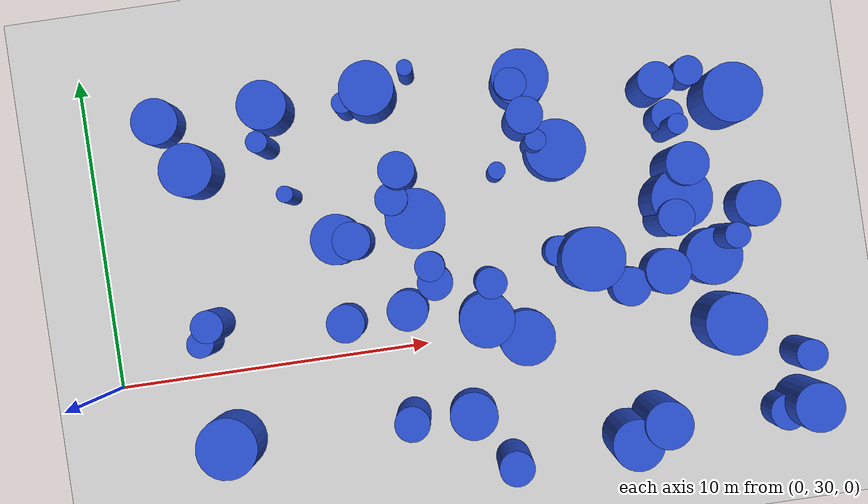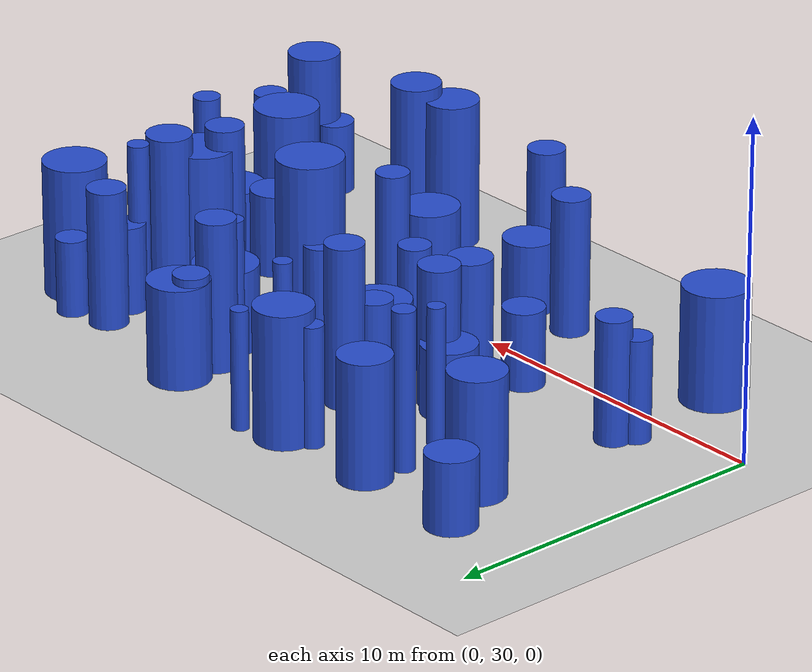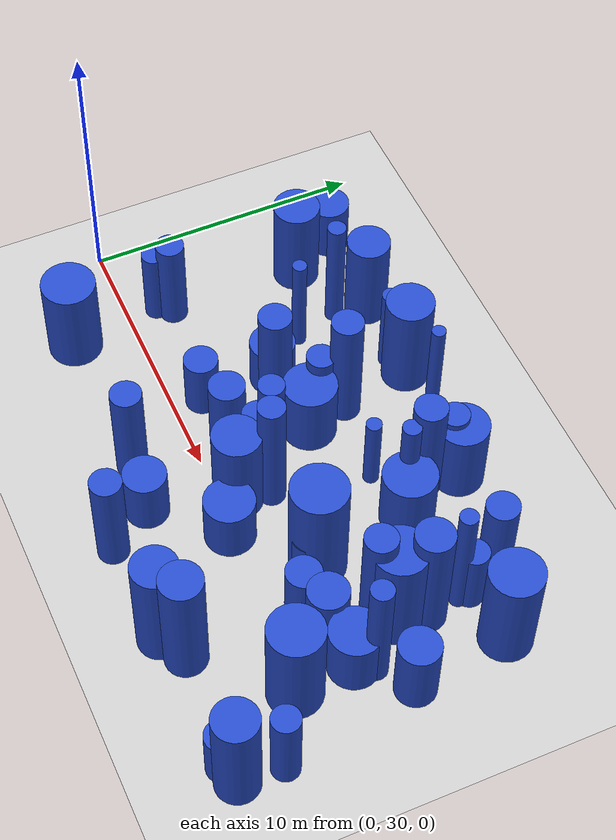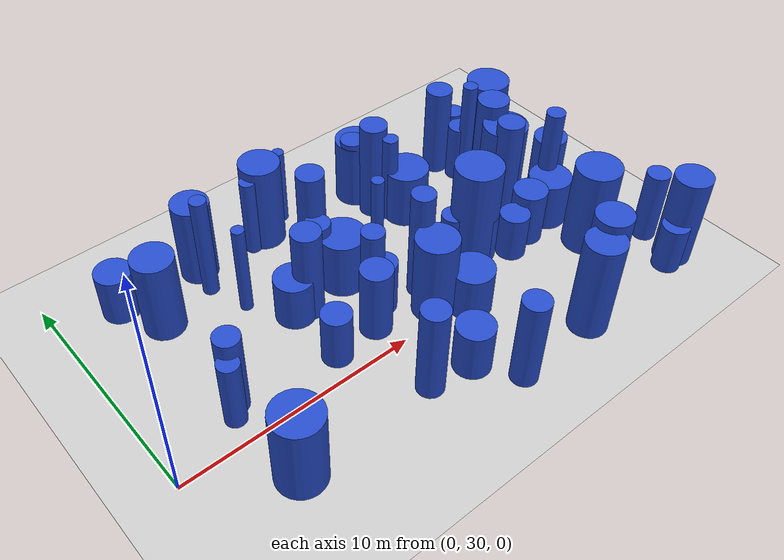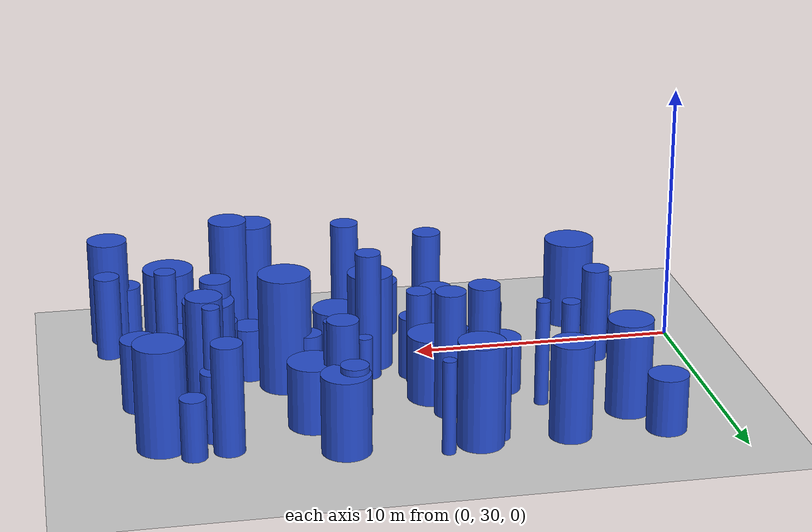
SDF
<sdf version="1.6">
 <world name="default">
  <model name="ground_plane">
   <static>1</static>
   <link name="link">
    <collision name="collision">
     <geometry><plane><normal>0 0 1</normal><size>100 100</size></plane></geometry>
     <surface><friction><ode><mu>100</mu><mu2>50</mu2></ode></friction></surface>
    </collision>
    <visual name="visual">
     <cast_shadows>0</cast_shadows>
     <geometry><plane><normal>0 0 1</normal><size>100 100</size></plane></geometry>
     <material>
      <script><uri>file://media/materials/scripts/gazebo.material</uri><name>Gazebo/Grey</name></script>
     </material>
    </visual>
   </link>
  </model>
  <model name="4">
   <static>0</static>
   <link name="link">
    <inertial>
     <mass>2</mass>
     <inertia>
      <ixx>2.76351</ixx>
      <ixy>0</ixy>
      <ixz>0</ixz>
      <iyy>2.76351</iyy>
      <iyz>0</iyz>
      <izz>0.0663908</izz>
     </inertia>
    </inertial>
    <collision name="collision">
     <geometry><cylinder><length>4.04745</length><radius>0.257664</radius></cylinder></geometry>
     <surface><contact><collide_without_contact>1</collide_without_contact></contact></surface>
    </collision>
    <visual name="visual">
     <geometry><cylinder><length>4.04745</length><radius>0.257664</radius></cylinder></geometry>
     <material>
      <script><uri>file://media/materials/scripts/gazebo.material</uri><name>Gazebo/Blue</name></script>
     </material>
    </visual>
    <gravity>0</gravity>
   </link>
   <pose>6.37285 35.2988 2.02373 0 -0 0</pose>
  </model>
  <model name="16">
   <static>0</static>
   <link name="link">
    <inertial>
     <mass>2</mass>
     <inertia><ixx>3.98692</ixx><ixy>0</ixy><ixz>0</ixz><iyy>3.98692</iyy><iyz>0</iyz><izz>0.541429</izz></inertia>
    </inertial>
    <collision name="collision">
     <geometry><cylinder><length>4.72199</length><radius>0.735818</radius></cylinder></geometry>
     <surface><contact><collide_without_contact>1</collide_without_contact></contact></surface>
    </collision>
    <visual name="visual">
     <geometry><cylinder><length>4.72199</length><radius>0.735818</radius></cylinder></geometry>
     <material>
      <script><uri>file://media/materials/scripts/gazebo.material</uri><name>Gazebo/Blue</name></script>
     </material>
    </visual>
    <gravity>0</gravity>
   </link>
   <pose>16.8892 26.7119 2.361 0 -0 0</pose>
  </model>
  <model name="21">
   <static>0</static>
   <link name="link">
    <inertial>
     <mass>2</mass>
     <inertia><ixx>3.15803</ixx><ixy>0</ixy><ixz>0</ixz><iyy>3.15803</iyy><iyz>0</iyz><izz>0.583815</izz></inertia>
    </inertial>
    <collision name="collision">
     <geometry><cylinder><length>4.14689</length><radius>0.764078</radius></cylinder></geometry>
     <surface><contact><collide_without_contact>1</collide_without_contact></contact></surface>
    </collision>
    <visual name="visual">
     <geometry><cylinder><length>4.14689</length><radius>0.764078</radius></cylinder></geometry>
     <material>
      <script><uri>file://media/materials/scripts/gazebo.material</uri><name>Gazebo/Blue</name></script>
     </material>
    </visual>
    <gravity>0</gravity>
   </link>
   <pose>21.5547 26.5343 2.07345 0 -0 0</pose>
  </model>
  <model name="33">
   <static>0</static>
   <link name="link">
    <inertial>
     <mass>2</mass>
     <inertia><ixx>3.67446</ixx><ixy>0</ixy><ixz>0</ixz><iyy>3.67446</iyy><iyz>0</iyz><izz>0.109586</izz></inertia>
    </inertial>
    <collision name="collision">
     <geometry><cylinder><length>4.66025</length><radius>0.331037</radius></cylinder></geometry>
     <surface><contact><collide_without_contact>1</collide_without_contact></contact></surface>
    </collision>
    <visual name="visual">
     <geometry><cylinder><length>4.66025</length><radius>0.331037</radius></cylinder></geometry>
     <material>
      <script><uri>file://media/materials/scripts/gazebo.material</uri><name>Gazebo/Blue</name></script>
     </material>
    </visual>
    <gravity>0</gravity>
   </link>
   <pose>5.79937 36.9559 2.33013 0 -0 0</pose>
  </model>
  <model name="57">
   <static>0</static>
   <link name="link">
    <inertial>
     <mass>2</mass>
     <inertia>
      <ixx>1.59473</ixx>
      <ixy>0</ixy>
      <ixz>0</ixz>
      <iyy>1.59473</iyy>
      <iyz>0</iyz>
      <izz>0.0761013</izz>
     </inertia>
    </inertial>
    <collision name="collision">
     <geometry><cylinder><length>3.05615</length><radius>0.275865</radius></cylinder></geometry>
     <surface><contact><collide_without_contact>1</collide_without_contact></contact></surface>
    </collision>
    <visual name="visual">
     <geometry><cylinder><length>3.05615</length><radius>0.275865</radius></cylinder></geometry>
     <material>
      <script><uri>file://media/materials/scripts/gazebo.material</uri><name>Gazebo/Blue</name></script>
     </material>
    </visual>
    <gravity>0</gravity>
   </link>
   <pose>12.885 35.111 1.52808 0 -0 0</pose>
  </model>
  <model name="66">
   <static>0</static>
   <link name="link">
    <inertial>
     <mass>2</mass>
     <inertia>
      <ixx>0.890381</ixx>
      <ixy>0</ixy>
      <ixz>0</ixz>
      <iyy>0.890381</iyy>
      <iyz>0</iyz>
      <izz>0.38752</izz>
     </inertia>
    </inertial>
    <collision name="collision">
     <geometry><cylinder><length>2.04444</length><radius>0.622511</radius></cylinder></geometry>
     <surface><contact><collide_without_contact>1</collide_without_contact></contact></surface>
    </collision>
    <visual name="visual">
     <geometry><cylinder><length>2.04444</length><radius>0.622511</radius></cylinder></geometry>
     <material>
      <script><uri>file://media/materials/scripts/gazebo.material</uri><name>Gazebo/Blue</name></script>
     </material>
    </visual>
    <gravity>0</gravity>
   </link>
   <pose>16.5905 30.9335 1.02222 0 -0 0</pose>
  </model>
  <model name="70">
   <static>0</static>
   <link name="link">
    <inertial>
     <mass>2</mass>
     <inertia>
      <ixx>0.970635</ixx>
      <ixy>0</ixy>
      <ixz>0</ixz>
      <iyy>0.970635</iyy>
      <iyz>0</iyz>
      <izz>0.218548</izz>
     </inertia>
    </inertial>
    <collision name="collision">
     <geometry><cylinder><length>2.27336</length><radius>0.467491</radius></cylinder></geometry>
     <surface><contact><collide_without_contact>1</collide_without_contact></contact></surface>
    </collision>
    <visual name="visual">
     <geometry><cylinder><length>2.27336</length><radius>0.467491</radius></cylinder></geometry>
     <material>
      <script><uri>file://media/materials/scripts/gazebo.material</uri><name>Gazebo/Blue</name></script>
     </material>
    </visual>
    <gravity>0</gravity>
   </link>
   <pose>19.2823 37.3799 1.13668 0 -0 0</pose>
  </model>
  <model name="73">
   <static>0</static>
   <link name="link">
    <inertial>
     <mass>2</mass>
     <inertia><ixx>1.07986</ixx><ixy>0</ixy><ixz>0</ixz><iyy>1.07986</iyy><iyz>0</iyz><izz>0.370104</izz></inertia>
    </inertial>
    <collision name="collision">
     <geometry><cylinder><length>2.31708</length><radius>0.608361</radius></cylinder></geometry>
     <surface><contact><collide_without_contact>1</collide_without_contact></contact></surface>
    </collision>
    <visual name="visual">
     <geometry><cylinder><length>2.31708</length><radius>0.608361</radius></cylinder></geometry>
     <material>
      <script><uri>file://media/materials/scripts/gazebo.material</uri><name>Gazebo/Blue</name></script>
     </material>
    </visual>
    <gravity>0</gravity>
   </link>
   <pose>7.54323 31.0733 1.15854 0 -0 0</pose>
  </model>
  <model name="86">
   <static>0</static>
   <link name="link">
    <inertial>
     <mass>2</mass>
     <inertia>
      <ixx>0.922564</ixx>
      <ixy>0</ixy>
      <ixz>0</ixz>
      <iyy>0.922564</iyy>
      <iyz>0</iyz>
      <izz>0.325367</izz>
     </inertia>
    </inertial>
    <collision name="collision">
     <geometry><cylinder><length>2.13525</length><radius>0.57041</radius></cylinder></geometry>
     <surface><contact><collide_without_contact>1</collide_without_contact></contact></surface>
    </collision>
    <visual name="visual">
     <geometry><cylinder><length>2.13525</length><radius>0.57041</radius></cylinder></geometry>
     <material>
      <script><uri>file://media/materials/scripts/gazebo.material</uri><name>Gazebo/Blue</name></script>
     </material>
    </visual>
    <gravity>0</gravity>
   </link>
   <pose>20.9038 26.3233 1.06762 0 -0 0</pose>
  </model>
  <model name="92">
   <static>0</static>
   <link name="link">
    <inertial>
     <mass>2</mass>
     <inertia><ixx>2.42741</ixx><ixy>0</ixy><ixz>0</ixz><iyy>2.42741</iyy><iyz>0</iyz><izz>0.934347</izz></inertia>
    </inertial>
    <collision name="collision">
     <geometry><cylinder><length>3.4295</length><radius>0.966616</radius></cylinder></geometry>
     <surface><contact><collide_without_contact>1</collide_without_contact></contact></surface>
    </collision>
    <visual name="visual">
     <geometry><cylinder><length>3.4295</length><radius>0.966616</radius></cylinder></geometry>
     <material>
      <script><uri>file://media/materials/scripts/gazebo.material</uri><name>Gazebo/Blue</name></script>
     </material>
    </visual>
    <gravity>0</gravity>
   </link>
   <pose>3.42909 27.821 1.71475 0 -0 0</pose>
  </model>
  <model name="144">
   <static>0</static>
   <link name="link">
    <inertial>
     <mass>2</mass>
     <inertia><ixx>2.65699</ixx><ixy>0</ixy><ixz>0</ixz><iyy>2.65699</iyy><iyz>0</iyz><izz>0.740727</izz></inertia>
    </inertial>
    <collision name="collision">
     <geometry><cylinder><length>3.70402</length><radius>0.860655</radius></cylinder></geometry>
     <surface><contact><collide_without_contact>1</collide_without_contact></contact></surface>
    </collision>
    <visual name="visual">
     <geometry><cylinder><length>3.70402</length><radius>0.860655</radius></cylinder></geometry>
     <material>
      <script><uri>file://media/materials/scripts/gazebo.material</uri><name>Gazebo/Blue</name></script>
     </material>
    </visual>
    <gravity>0</gravity>
   </link>
   <pose>11.9288 30.6022 1.85201 0 -0 0</pose>
  </model>
  <model name="146">
   <static>0</static>
   <link name="link">
    <inertial>
     <mass>2</mass>
     <inertia><ixx>1.86074</ixx><ixy>0</ixy><ixz>0</ixz><iyy>1.86074</iyy><iyz>0</iyz><izz>0.802678</izz></inertia>
    </inertial>
    <collision name="collision">
     <geometry><cylinder><length>2.95913</length><radius>0.895923</radius></cylinder></geometry>
     <surface><contact><collide_without_contact>1</collide_without_contact></contact></surface>
    </collision>
    <visual name="visual">
     <geometry><cylinder><length>2.95913</length><radius>0.895923</radius></cylinder></geometry>
     <material>
      <script><uri>file://media/materials/scripts/gazebo.material</uri><name>Gazebo/Blue</name></script>
     </material>
    </visual>
    <gravity>0</gravity>
   </link>
   <pose>14.0103 37.8708 1.47956 0 -0 0</pose>
  </model>
  <model name="148">
   <static>0</static>
   <link name="link">
    <inertial>
     <mass>2</mass>
     <inertia><ixx>1.88797</ixx><ixy>0</ixy><ixz>0</ixz><iyy>1.88797</iyy><iyz>0</iyz><izz>0.238703</izz></inertia>
    </inertial>
    <collision name="collision">
     <geometry><cylinder><length>3.25756</length><radius>0.488572</radius></cylinder></geometry>
     <surface><contact><collide_without_contact>1</collide_without_contact></contact></surface>
    </collision>
    <visual name="visual">
     <geometry><cylinder><length>3.25756</length><radius>0.488572</radius></cylinder></geometry>
     <material>
      <script><uri>file://media/materials/scripts/gazebo.material</uri><name>Gazebo/Blue</name></script>
     </material>
    </visual>
    <gravity>0</gravity>
   </link>
   <pose>21.6938 28.0796 1.62878 0 -0 0</pose>
  </model>
  <model name="156">
   <static>0</static>
   <link name="link">
    <inertial>
     <mass>2</mass>
     <inertia><ixx>2.84976</ixx><ixy>0</ixy><ixz>0</ixz><iyy>2.84976</iyy><iyz>0</iyz><izz>0.29992</izz></inertia>
    </inertial>
    <collision name="collision">
     <geometry><cylinder><length>4.02477</length><radius>0.54765</radius></cylinder></geometry>
     <surface><contact><collide_without_contact>1</collide_without_contact></contact></surface>
    </collision>
    <visual name="visual">
     <geometry><cylinder><length>4.02477</length><radius>0.54765</radius></cylinder></geometry>
     <material>
      <script><uri>file://media/materials/scripts/gazebo.material</uri><name>Gazebo/Blue</name></script>
     </material>
    </visual>
    <gravity>0</gravity>
   </link>
   <pose>12.1792 25.9984 2.01239 0 -0 0</pose>
  </model>
  <model name="162">
   <static>0</static>
   <link name="link">
    <inertial>
     <mass>2</mass>
     <inertia><ixx>1.635</ixx><ixy>0</ixy><ixz>0</ixz><iyy>1.635</iyy><iyz>0</iyz><izz>0.179993</izz></inertia>
    </inertial>
    <collision name="collision">
     <geometry><cylinder><length>3.04468</length><radius>0.424255</radius></cylinder></geometry>
     <surface><contact><collide_without_contact>1</collide_without_contact></contact></surface>
    </collision>
    <visual name="visual">
     <geometry><cylinder><length>3.04468</length><radius>0.424255</radius></cylinder></geometry>
     <material>
      <script><uri>file://media/materials/scripts/gazebo.material</uri><name>Gazebo/Blue</name></script>
     </material>
    </visual>
    <gravity>0</gravity>
   </link>
   <pose>3.04036 31.1089 1.52234 0 -0 0</pose>
  </model>
  <model name="174">
   <static>0</static>
   <link name="link">
    <inertial>
     <mass>2</mass>
     <inertia><ixx>3.38568</ixx><ixy>0</ixy><ixz>0</ixz><iyy>3.38568</iyy><iyz>0</iyz><izz>0.876601</izz></inertia>
    </inertial>
    <collision name="collision">
     <geometry><cylinder><length>4.20526</length><radius>0.93627</radius></cylinder></geometry>
     <surface><contact><collide_without_contact>1</collide_without_contact></contact></surface>
    </collision>
    <visual name="visual">
     <geometry><cylinder><length>4.20526</length><radius>0.93627</radius></cylinder></geometry>
     <material>
      <script><uri>file://media/materials/scripts/gazebo.material</uri><name>Gazebo/Blue</name></script>
     </material>
    </visual>
    <gravity>0</gravity>
   </link>
   <pose>18.3005 33.4376 2.10263 0 -0 0</pose>
  </model>
  <model name="176">
   <static>0</static>
   <link name="link">
    <inertial>
     <mass>2</mass>
     <inertia><ixx>3.79879</ixx><ixy>0</ixy><ixz>0</ixz><iyy>3.79879</iyy><iyz>0</iyz><izz>0.971919</izz></inertia>
    </inertial>
    <collision name="collision">
     <geometry><cylinder><length>4.45836</length><radius>0.98586</radius></cylinder></geometry>
     <surface><contact><collide_without_contact>1</collide_without_contact></contact></surface>
    </collision>
    <visual name="visual">
     <geometry><cylinder><length>4.45836</length><radius>0.98586</radius></cylinder></geometry>
     <material>
      <script><uri>file://media/materials/scripts/gazebo.material</uri><name>Gazebo/Blue</name></script>
     </material>
    </visual>
    <gravity>0</gravity>
   </link>
   <pose>15.3652 31.9953 2.22918 0 -0 0</pose>
  </model>
  <model name="181">
   <static>0</static>
   <link name="link">
    <inertial>
     <mass>2</mass>
     <inertia><ixx>3.07901</ixx><ixy>0</ixy><ixz>0</ixz><iyy>3.07901</iyy><iyz>0</iyz><izz>0.85425</izz></inertia>
    </inertial>
    <collision name="collision">
     <geometry><cylinder><length>3.9889</length><radius>0.924257</radius></cylinder></geometry>
     <surface><contact><collide_without_contact>1</collide_without_contact></contact></surface>
    </collision>
    <visual name="visual">
     <geometry><cylinder><length>3.9889</length><radius>0.924257</radius></cylinder></geometry>
     <material>
      <script><uri>file://media/materials/scripts/gazebo.material</uri><name>Gazebo/Blue</name></script>
     </material>
    </visual>
    <gravity>0</gravity>
   </link>
   <pose>20.3105 36.4134 1.99445 0 -0 0</pose>
  </model>
  <model name="182">
   <static>0</static>
   <link name="link">
    <inertial>
     <mass>2</mass>
     <inertia><ixx>3.45326</ixx><ixy>0</ixy><ixz>0</ixz><iyy>3.45326</iyy><iyz>0</iyz><izz>0.329083</izz></inertia>
    </inertial>
    <collision name="collision">
     <geometry><cylinder><length>4.44211</length><radius>0.573658</radius></cylinder></geometry>
     <surface><contact><collide_without_contact>1</collide_without_contact></contact></surface>
    </collision>
    <visual name="visual">
     <geometry><cylinder><length>4.44211</length><radius>0.573658</radius></cylinder></geometry>
     <material>
      <script><uri>file://media/materials/scripts/gazebo.material</uri><name>Gazebo/Blue</name></script>
     </material>
    </visual>
    <gravity>0</gravity>
   </link>
   <pose>13.9124 36.611 2.22105 0 -0 0</pose>
  </model>
  <model name="187">
   <static>0</static>
   <link name="link">
    <inertial>
     <mass>2</mass>
     <inertia><ixx>1.61433</ixx><ixy>0</ixy><ixz>0</ixz><iyy>1.61433</iyy><iyz>0</iyz><izz>0.267255</izz></inertia>
    </inertial>
    <collision name="collision">
     <geometry><cylinder><length>2.98064</length><radius>0.516967</radius></cylinder></geometry>
     <surface><contact><collide_without_contact>1</collide_without_contact></contact></surface>
    </collision>
    <visual name="visual">
     <geometry><cylinder><length>2.98064</length><radius>0.516967</radius></cylinder></geometry>
     <material>
      <script><uri>file://media/materials/scripts/gazebo.material</uri><name>Gazebo/Blue</name></script>
     </material>
    </visual>
    <gravity>0</gravity>
   </link>
   <pose>9.52698 34.7119 1.49032 0 -0 0</pose>
  </model>
  <model name="211">
   <static>0</static>
   <link name="link">
    <inertial>
     <mass>2</mass>
     <inertia><ixx>2.15898</ixx><ixy>0</ixy><ixz>0</ixz><iyy>2.15898</iyy><iyz>0</iyz><izz>0.107893</izz></inertia>
    </inertial>
    <collision name="collision">
     <geometry><cylinder><length>3.5539</length><radius>0.328471</radius></cylinder></geometry>
     <surface><contact><collide_without_contact>1</collide_without_contact></contact></surface>
    </collision>
    <visual name="visual">
     <geometry><cylinder><length>3.5539</length><radius>0.328471</radius></cylinder></geometry>
     <material>
      <script><uri>file://media/materials/scripts/gazebo.material</uri><name>Gazebo/Blue</name></script>
     </material>
    </visual>
    <gravity>0</gravity>
   </link>
   <pose>8.47169 37.8363 1.77695 0 -0 0</pose>
  </model>
  <model name="216">
   <static>0</static>
   <link name="link">
    <inertial>
     <mass>2</mass>
     <inertia><ixx>1.51501</ixx><ixy>0</ixy><ixz>0</ixz><iyy>1.51501</iyy><iyz>0</iyz><izz>0.904808</izz></inertia>
    </inertial>
    <collision name="collision">
     <geometry><cylinder><length>2.525</length><radius>0.951214</radius></cylinder></geometry>
     <surface><contact><collide_without_contact>1</collide_without_contact></contact></surface>
    </collision>
    <visual name="visual">
     <geometry><cylinder><length>2.525</length><radius>0.951214</radius></cylinder></geometry>
     <material>
      <script><uri>file://media/materials/scripts/gazebo.material</uri><name>Gazebo/Blue</name></script>
     </material>
    </visual>
    <gravity>0</gravity>
   </link>
   <pose>10.1743 34.0222 1.2625 0 -0 0</pose>
  </model>
  <model name="231">
   <static>0</static>
   <link name="link">
    <inertial>
     <mass>2</mass>
     <inertia><ixx>2.96091</ixx><ixy>0</ixy><ixz>0</ixz><iyy>2.96091</iyy><iyz>0</iyz><izz>0.303057</izz></inertia>
    </inertial>
    <collision name="collision">
     <geometry><cylinder><length>4.10564</length><radius>0.550506</radius></cylinder></geometry>
     <surface><contact><collide_without_contact>1</collide_without_contact></contact></surface>
    </collision>
    <visual name="visual">
     <geometry><cylinder><length>4.10564</length><radius>0.550506</radius></cylinder></geometry>
     <material>
      <script><uri>file://media/materials/scripts/gazebo.material</uri><name>Gazebo/Blue</name></script>
     </material>
    </visual>
    <gravity>0</gravity>
   </link>
   <pose>9.21298 27.8071 2.05282 0 -0 0</pose>
  </model>
  <model name="232">
   <static>0</static>
   <link name="link">
    <inertial>
     <mass>2</mass>
     <inertia><ixx>1.0838</ixx><ixy>0</ixy><ixz>0</ixz><iyy>1.0838</iyy><iyz>0</iyz><izz>0.788768</izz></inertia>
    </inertial>
    <collision name="collision">
     <geometry><cylinder><length>2.03384</length><radius>0.888126</radius></cylinder></geometry>
     <surface><contact><collide_without_contact>1</collide_without_contact></contact></surface>
    </collision>
    <visual name="visual">
     <geometry><cylinder><length>2.03384</length><radius>0.888126</radius></cylinder></geometry>
     <material>
      <script><uri>file://media/materials/scripts/gazebo.material</uri><name>Gazebo/Blue</name></script>
     </material>
    </visual>
    <gravity>0</gravity>
   </link>
   <pose>13.1248 29.806 1.01692 0 -0 0</pose>
  </model>
  <model name="277">
   <static>0</static>
   <link name="link">
    <inertial>
     <mass>2</mass>
     <inertia><ixx>1.46714</ixx><ixy>0</ixy><ixz>0</ixz><iyy>1.46714</iyy><iyz>0</iyz><izz>0.509604</izz></inertia>
    </inertial>
    <collision name="collision">
     <geometry><cylinder><length>2.69705</length><radius>0.713866</radius></cylinder></geometry>
     <surface><contact><collide_without_contact>1</collide_without_contact></contact></surface>
    </collision>
    <visual name="visual">
     <geometry><cylinder><length>2.69705</length><radius>0.713866</radius></cylinder></geometry>
     <material>
      <script><uri>file://media/materials/scripts/gazebo.material</uri><name>Gazebo/Blue</name></script>
     </material>
    </visual>
    <gravity>0</gravity>
   </link>
   <pose>20.7955 32.9551 1.34852 0 -0 0</pose>
  </model>
  <model name="278">
   <static>0</static>
   <link name="link">
    <inertial>
     <mass>2</mass>
     <inertia><ixx>2.51276</ixx><ixy>0</ixy><ixz>0</ixz><iyy>2.51276</iyy><iyz>0</iyz><izz>0.59347</izz></inertia>
    </inertial>
    <collision name="collision">
     <geometry><cylinder><length>3.64639</length><radius>0.77037</radius></cylinder></geometry>
     <surface><contact><collide_without_contact>1</collide_without_contact></contact></surface>
    </collision>
    <visual name="visual">
     <geometry><cylinder><length>3.64639</length><radius>0.77037</radius></cylinder></geometry>
     <material>
      <script><uri>file://media/materials/scripts/gazebo.material</uri><name>Gazebo/Blue</name></script>
     </material>
    </visual>
    <gravity>0</gravity>
   </link>
   <pose>6.0175 38.1187 1.8232 0 -0 0</pose>
  </model>
  <model name="282">
   <static>0</static>
   <link name="link">
    <inertial>
     <mass>2</mass>
     <inertia><ixx>1.20351</ixx><ixy>0</ixy><ixz>0</ixz><iyy>1.20351</iyy><iyz>0</iyz><izz>0.809383</izz></inertia>
    </inertial>
    <collision name="collision">
     <geometry><cylinder><length>2.18927</length><radius>0.899657</radius></cylinder></geometry>
     <surface><contact><collide_without_contact>1</collide_without_contact></contact></surface>
    </collision>
    <visual name="visual">
     <geometry><cylinder><length>2.18927</length><radius>0.899657</radius></cylinder></geometry>
     <material>
      <script><uri>file://media/materials/scripts/gazebo.material</uri><name>Gazebo/Blue</name></script>
     </material>
    </visual>
    <gravity>0</gravity>
   </link>
   <pose>19.286 31.5082 1.09464 0 -0 0</pose>
  </model>
  <model name="307">
   <static>0</static>
   <link name="link">
    <inertial>
     <mass>2</mass>
     <inertia><ixx>4.06389</ixx><ixy>0</ixy><ixz>0</ixz><iyy>4.06389</iyy><iyz>0</iyz><izz>0.438309</izz></inertia>
    </inertial>
    <collision name="collision">
     <geometry><cylinder><length>4.80296</length><radius>0.662049</radius></cylinder></geometry>
     <surface><contact><collide_without_contact>1</collide_without_contact></contact></surface>
    </collision>
    <visual name="visual">
     <geometry><cylinder><length>4.80296</length><radius>0.662049</radius></cylinder></geometry>
     <material>
      <script><uri>file://media/materials/scripts/gazebo.material</uri><name>Gazebo/Blue</name></script>
     </material>
    </visual>
    <gravity>0</gravity>
   </link>
   <pose>18.5424 34.4415 2.40148 0 -0 0</pose>
  </model>
  <model name="317">
   <static>0</static>
   <link name="link">
    <inertial>
     <mass>2</mass>
     <inertia><ixx>3.03619</ixx><ixy>0</ixy><ixz>0</ixz><iyy>3.03619</iyy><iyz>0</iyz><izz>0.899867</izz></inertia>
    </inertial>
    <collision name="collision">
     <geometry><cylinder><length>3.93923</length><radius>0.948613</radius></cylinder></geometry>
     <surface><contact><collide_without_contact>1</collide_without_contact></contact></surface>
    </collision>
    <visual name="visual">
     <geometry><cylinder><length>3.93923</length><radius>0.948613</radius></cylinder></geometry>
     <material>
      <script><uri>file://media/materials/scripts/gazebo.material</uri><name>Gazebo/Blue</name></script>
     </material>
    </visual>
    <gravity>0</gravity>
   </link>
   <pose>19.4307 29.3952 1.96962 0 -0 0</pose>
  </model>
  <model name="319">
   <static>0</static>
   <link name="link">
    <inertial>
     <mass>2</mass>
     <inertia><ixx>3.92838</ixx><ixy>0</ixy><ixz>0</ixz><iyy>3.92838</iyy><iyz>0</iyz><izz>0.319174</izz></inertia>
    </inertial>
    <collision name="collision">
     <geometry><cylinder><length>4.75529</length><radius>0.564955</radius></cylinder></geometry>
     <surface><contact><collide_without_contact>1</collide_without_contact></contact></surface>
    </collision>
    <visual name="visual">
     <geometry><cylinder><length>4.75529</length><radius>0.564955</radius></cylinder></geometry>
     <material>
      <script><uri>file://media/materials/scripts/gazebo.material</uri><name>Gazebo/Blue</name></script>
     </material>
    </visual>
    <gravity>0</gravity>
   </link>
   <pose>9.84475 35.5074 2.37765 0 -0 0</pose>
  </model>
  <model name="322">
   <static>0</static>
   <link name="link">
    <inertial>
     <mass>2</mass>
     <inertia><ixx>2.99831</ixx><ixy>0</ixy><ixz>0</ixz><iyy>2.99831</iyy><iyz>0</iyz><izz>0.350652</izz></inertia>
    </inertial>
    <collision name="collision">
     <geometry><cylinder><length>4.11557</length><radius>0.592159</radius></cylinder></geometry>
     <surface><contact><collide_without_contact>1</collide_without_contact></contact></surface>
    </collision>
    <visual name="visual">
     <geometry><cylinder><length>4.11557</length><radius>0.592159</radius></cylinder></geometry>
     <material>
      <script><uri>file://media/materials/scripts/gazebo.material</uri><name>Gazebo/Blue</name></script>
     </material>
    </visual>
    <gravity>0</gravity>
   </link>
   <pose>8.17473 33.5927 2.05779 0 -0 0</pose>
  </model>
  <model name="327">
   <static>0</static>
   <link name="link">
    <inertial>
     <mass>2</mass>
     <inertia>
      <ixx>0.983309</ixx>
      <ixy>0</ixy>
      <ixz>0</ixz>
      <iyy>0.983309</iyy>
      <iyz>0</iyz>
      <izz>0.46405</izz>
     </inertia>
    </inertial>
    <collision name="collision">
     <geometry><cylinder><length>2.12314</length><radius>0.681212</radius></cylinder></geometry>
     <surface><contact><collide_without_contact>1</collide_without_contact></contact></surface>
    </collision>
    <visual name="visual">
     <geometry><cylinder><length>2.12314</length><radius>0.681212</radius></cylinder></geometry>
     <material>
      <script><uri>file://media/materials/scripts/gazebo.material</uri><name>Gazebo/Blue</name></script>
     </material>
    </visual>
    <gravity>0</gravity>
   </link>
   <pose>15.4896 31.6923 1.06157 0 -0 0</pose>
  </model>
  <model name="332">
   <static>0</static>
   <link name="link">
    <inertial>
     <mass>2</mass>
     <inertia><ixx>1.82973</ixx><ixy>0</ixy><ixz>0</ixz><iyy>1.82973</iyy><iyz>0</iyz><izz>0.258966</izz></inertia>
    </inertial>
    <collision name="collision">
     <geometry><cylinder><length>3.19398</length><radius>0.508887</radius></cylinder></geometry>
     <surface><contact><collide_without_contact>1</collide_without_contact></contact></surface>
    </collision>
    <visual name="visual">
     <geometry><cylinder><length>3.19398</length><radius>0.508887</radius></cylinder></geometry>
     <material>
      <script><uri>file://media/materials/scripts/gazebo.material</uri><name>Gazebo/Blue</name></script>
     </material>
    </visual>
    <gravity>0</gravity>
   </link>
   <pose>13.6757 37.7012 1.59699 0 -0 0</pose>
  </model>
  <model name="336">
   <static>0</static>
   <link name="link">
    <inertial>
     <mass>2</mass>
     <inertia><ixx>1.03424</ixx><ixy>0</ixy><ixz>0</ixz><iyy>1.03424</iyy><iyz>0</iyz><izz>0.544578</izz></inertia>
    </inertial>
    <collision name="collision">
     <geometry><cylinder><length>2.13816</length><radius>0.737955</radius></cylinder></geometry>
     <surface><contact><collide_without_contact>1</collide_without_contact></contact></surface>
    </collision>
    <visual name="visual">
     <geometry><cylinder><length>2.13816</length><radius>0.737955</radius></cylinder></geometry>
     <material>
      <script><uri>file://media/materials/scripts/gazebo.material</uri><name>Gazebo/Blue</name></script>
     </material>
    </visual>
    <gravity>0</gravity>
   </link>
   <pose>2.49815 38.2133 1.06908 0 -0 0</pose>
  </model>
  <model name="339">
   <static>0</static>
   <link name="link">
    <inertial>
     <mass>2</mass>
     <inertia>
      <ixx>4.01166</ixx>
      <ixy>0</ixy>
      <ixz>0</ixz>
      <iyy>4.01166</iyy>
      <iyz>0</iyz>
      <izz>0.0983812</izz>
     </inertia>
    </inertial>
    <collision name="collision">
     <geometry><cylinder><length>4.87594</length><radius>0.313658</radius></cylinder></geometry>
     <surface><contact><collide_without_contact>1</collide_without_contact></contact></surface>
    </collision>
    <visual name="visual">
     <geometry><cylinder><length>4.87594</length><radius>0.313658</radius></cylinder></geometry>
     <material>
      <script><uri>file://media/materials/scripts/gazebo.material</uri><name>Gazebo/Blue</name></script>
     </material>
    </visual>
    <gravity>0</gravity>
   </link>
   <pose>18.4054 35.6569 2.43797 0 -0 0</pose>
  </model>
  <model name="344">
   <static>0</static>
   <link name="link">
    <inertial>
     <mass>2</mass>
     <inertia><ixx>3.97624</ixx><ixy>0</ixy><ixz>0</ixz><iyy>3.97624</iyy><iyz>0</iyz><izz>0.314707</izz></inertia>
    </inertial>
    <collision name="collision">
     <geometry><cylinder><length>4.78679</length><radius>0.560987</radius></cylinder></geometry>
     <surface><contact><collide_without_contact>1</collide_without_contact></contact></surface>
    </collision>
    <visual name="visual">
     <geometry><cylinder><length>4.78679</length><radius>0.560987</radius></cylinder></geometry>
     <material>
      <script><uri>file://media/materials/scripts/gazebo.material</uri><name>Gazebo/Blue</name></script>
     </material>
    </visual>
    <gravity>0</gravity>
   </link>
   <pose>17.9844 32.8829 2.39339 0 -0 0</pose>
  </model>
  <model name="360">
   <static>0</static>
   <link name="link">
    <inertial>
     <mass>2</mass>
     <inertia><ixx>2.96996</ixx><ixy>0</ixy><ixz>0</ixz><iyy>2.96996</iyy><iyz>0</iyz><izz>0.319183</izz></inertia>
    </inertial>
    <collision name="collision">
     <geometry><cylinder><length>4.10636</length><radius>0.564963</radius></cylinder></geometry>
     <surface><contact><collide_without_contact>1</collide_without_contact></contact></surface>
    </collision>
    <visual name="visual">
     <geometry><cylinder><length>4.10636</length><radius>0.564963</radius></cylinder></geometry>
     <material>
      <script><uri>file://media/materials/scripts/gazebo.material</uri><name>Gazebo/Blue</name></script>
     </material>
    </visual>
    <gravity>0</gravity>
   </link>
   <pose>18.0344 37.1051 2.05318 0 -0 0</pose>
  </model>
  <model name="374">
   <static>0</static>
   <link name="link">
    <inertial>
     <mass>2</mass>
     <inertia><ixx>2.36032</ixx><ixy>0</ixy><ixz>0</ixz><iyy>2.36032</iyy><iyz>0</iyz><izz>0.257529</izz></inertia>
    </inertial>
    <collision name="collision">
     <geometry><cylinder><length>3.65914</length><radius>0.507473</radius></cylinder></geometry>
     <surface><contact><collide_without_contact>1</collide_without_contact></contact></surface>
    </collision>
    <visual name="visual">
     <geometry><cylinder><length>3.65914</length><radius>0.507473</radius></cylinder></geometry>
     <material>
      <script><uri>file://media/materials/scripts/gazebo.material</uri><name>Gazebo/Blue</name></script>
     </material>
    </visual>
    <gravity>0</gravity>
   </link>
   <pose>3.39471 31.6282 1.82957 0 -0 0</pose>
  </model>
  <model name="389">
   <static>0</static>
   <link name="link">
    <inertial>
     <mass>2</mass>
     <inertia><ixx>1.86877</ixx><ixy>0</ixy><ixz>0</ixz><iyy>1.86877</iyy><iyz>0</iyz><izz>0.412964</izz></inertia>
    </inertial>
    <collision name="collision">
     <geometry><cylinder><length>3.15812</length><radius>0.642623</radius></cylinder></geometry>
     <surface><contact><collide_without_contact>1</collide_without_contact></contact></surface>
    </collision>
    <visual name="visual">
     <geometry><cylinder><length>3.15812</length><radius>0.642623</radius></cylinder></geometry>
     <material>
      <script><uri>file://media/materials/scripts/gazebo.material</uri><name>Gazebo/Blue</name></script>
     </material>
    </visual>
    <gravity>0</gravity>
   </link>
   <pose>9.54189 31.229 1.57906 0 -0 0</pose>
  </model>
  <model name="394">
   <static>0</static>
   <link name="link">
    <inertial>
     <mass>2</mass>
     <inertia><ixx>1.46649</ixx><ixy>0</ixy><ixz>0</ixz><iyy>1.46649</iyy><iyz>0</iyz><izz>0.899745</izz></inertia>
    </inertial>
    <collision name="collision">
     <geometry><cylinder><length>2.46975</length><radius>0.948549</radius></cylinder></geometry>
     <surface><contact><collide_without_contact>1</collide_without_contact></contact></surface>
    </collision>
    <visual name="visual">
     <geometry><cylinder><length>2.46975</length><radius>0.948549</radius></cylinder></geometry>
     <material>
      <script><uri>file://media/materials/scripts/gazebo.material</uri><name>Gazebo/Blue</name></script>
     </material>
    </visual>
    <gravity>0</gravity>
   </link>
   <pose>14.8178 35.5403 1.23488 0 -0 0</pose>
  </model>
  <model name="397">
   <static>0</static>
   <link name="link">
    <inertial>
     <mass>2</mass>
     <inertia><ixx>2.26137</ixx><ixy>0</ixy><ixz>0</ixz><iyy>2.26137</iyy><iyz>0</iyz><izz>0.220916</izz></inertia>
    </inertial>
    <collision name="collision">
     <geometry><cylinder><length>3.59242</length><radius>0.470017</radius></cylinder></geometry>
     <surface><contact><collide_without_contact>1</collide_without_contact></contact></surface>
    </collision>
    <visual name="visual">
     <geometry><cylinder><length>3.59242</length><radius>0.470017</radius></cylinder></geometry>
     <material>
      <script><uri>file://media/materials/scripts/gazebo.material</uri><name>Gazebo/Blue</name></script>
     </material>
    </visual>
    <gravity>0</gravity>
   </link>
   <pose>10.4171 32.482 1.79621 0 -0 0</pose>
  </model>
  <model name="411">
   <static>0</static>
   <link name="link">
    <inertial>
     <mass>2</mass>
     <inertia>
      <ixx>0.827458</ixx>
      <ixy>0</ixy>
      <ixz>0</ixz>
      <iyy>0.827458</iyy>
      <iyz>0</iyz>
      <izz>0.0778628</izz>
     </inertia>
    </inertial>
    <collision name="collision">
     <geometry><cylinder><length>2.17512</length><radius>0.279039</radius></cylinder></geometry>
     <surface><contact><collide_without_contact>1</collide_without_contact></contact></surface>
    </collision>
    <visual name="visual">
     <geometry><cylinder><length>2.17512</length><radius>0.279039</radius></cylinder></geometry>
     <material>
      <script><uri>file://media/materials/scripts/gazebo.material</uri><name>Gazebo/Blue</name></script>
     </material>
    </visual>
    <gravity>0</gravity>
   </link>
   <pose>5.9985 38.5905 1.08756 0 -0 0</pose>
  </model>
  <model name="412">
   <static>0</static>
   <link name="link">
    <inertial>
     <mass>2</mass>
     <inertia><ixx>4.19929</ixx><ixy>0</ixy><ixz>0</ixz><iyy>4.19929</iyy><iyz>0</iyz><izz>0.23009</izz></inertia>
    </inertial>
    <collision name="collision">
     <geometry><cylinder><length>4.9503</length><radius>0.479677</radius></cylinder></geometry>
     <surface><contact><collide_without_contact>1</collide_without_contact></contact></surface>
    </collision>
    <visual name="visual">
     <geometry><cylinder><length>4.9503</length><radius>0.479677</radius></cylinder></geometry>
     <material>
      <script><uri>file://media/materials/scripts/gazebo.material</uri><name>Gazebo/Blue</name></script>
     </material>
    </visual>
    <gravity>0</gravity>
   </link>
   <pose>12.1891 31.7289 2.47515 0 -0 0</pose>
  </model>
  <model name="425">
   <static>0</static>
   <link name="link">
    <inertial>
     <mass>2</mass>
     <inertia><ixx>4.06559</ixx><ixy>0</ixy><ixz>0</ixz><iyy>4.06559</iyy><iyz>0</iyz><izz>0.153631</izz></inertia>
    </inertial>
    <collision name="collision">
     <geometry><cylinder><length>4.8921</length><radius>0.391958</radius></cylinder></geometry>
     <surface><contact><collide_without_contact>1</collide_without_contact></contact></surface>
    </collision>
    <visual name="visual">
     <geometry><cylinder><length>4.8921</length><radius>0.391958</radius></cylinder></geometry>
     <material>
      <script><uri>file://media/materials/scripts/gazebo.material</uri><name>Gazebo/Blue</name></script>
     </material>
    </visual>
    <gravity>0</gravity>
   </link>
   <pose>19.7169 32.0905 2.44605 0 -0 0</pose>
  </model>
  <model name="430">
   <static>0</static>
   <link name="link">
    <inertial>
     <mass>2</mass>
     <inertia><ixx>2.83448</ixx><ixy>0</ixy><ixz>0</ixz><iyy>2.83448</iyy><iyz>0</iyz><izz>0.108666</izz></inertia>
    </inertial>
    <collision name="collision">
     <geometry><cylinder><length>4.08422</length><radius>0.329646</radius></cylinder></geometry>
     <surface><contact><collide_without_contact>1</collide_without_contact></contact></surface>
    </collision>
    <visual name="visual">
     <geometry><cylinder><length>4.08422</length><radius>0.329646</radius></cylinder></geometry>
     <material>
      <script><uri>file://media/materials/scripts/gazebo.material</uri><name>Gazebo/Blue</name></script>
     </material>
    </visual>
    <gravity>0</gravity>
   </link>
   <pose>14.1571 35.8301 2.04211 0 -0 0</pose>
  </model>
  <model name="438">
   <static>0</static>
   <link name="link">
    <inertial>
     <mass>2</mass>
     <inertia><ixx>1.2605</ixx><ixy>0</ixy><ixz>0</ixz><iyy>1.2605</iyy><iyz>0</iyz><izz>0.510558</izz></inertia>
    </inertial>
    <collision name="collision">
     <geometry><cylinder><length>2.45588</length><radius>0.714533</radius></cylinder></geometry>
     <surface><contact><collide_without_contact>1</collide_without_contact></contact></surface>
    </collision>
    <visual name="visual">
     <geometry><cylinder><length>2.45588</length><radius>0.714533</radius></cylinder></geometry>
     <material>
      <script><uri>file://media/materials/scripts/gazebo.material</uri><name>Gazebo/Blue</name></script>
     </material>
    </visual>
    <gravity>0</gravity>
   </link>
   <pose>17.7698 31.2497 1.22794 0 -0 0</pose>
  </model>
  <model name="439">
   <static>0</static>
   <link name="link">
    <inertial>
     <mass>2</mass>
     <inertia><ixx>2.51418</ixx><ixy>0</ixy><ixz>0</ixz><iyy>2.51418</iyy><iyz>0</iyz><izz>0.695095</izz></inertia>
    </inertial>
    <collision name="collision">
     <geometry><cylinder><length>3.60552</length><radius>0.833724</radius></cylinder></geometry>
     <surface><contact><collide_without_contact>1</collide_without_contact></contact></surface>
    </collision>
    <visual name="visual">
     <geometry><cylinder><length>3.60552</length><radius>0.833724</radius></cylinder></geometry>
     <material>
      <script><uri>file://media/materials/scripts/gazebo.material</uri><name>Gazebo/Blue</name></script>
     </material>
    </visual>
    <gravity>0</gravity>
   </link>
   <pose>3.42693 36.4871 1.80276 0 -0 0</pose>
  </model>
  <model name="441">
   <static>0</static>
   <link name="link">
    <inertial>
     <mass>2</mass>
     <inertia><ixx>1.26284</ixx><ixy>0</ixy><ixz>0</ixz><iyy>1.26284</iyy><iyz>0</iyz><izz>0.251954</izz></inertia>
    </inertial>
    <collision name="collision">
     <geometry><cylinder><length>2.61174</length><radius>0.50195</radius></cylinder></geometry>
     <surface><contact><collide_without_contact>1</collide_without_contact></contact></surface>
    </collision>
    <visual name="visual">
     <geometry><cylinder><length>2.61174</length><radius>0.50195</radius></cylinder></geometry>
     <material>
      <script><uri>file://media/materials/scripts/gazebo.material</uri><name>Gazebo/Blue</name></script>
     </material>
    </visual>
    <gravity>0</gravity>
   </link>
   <pose>18.4032 36.0696 1.30587 0 -0 0</pose>
  </model>
  <model name="444">
   <static>0</static>
   <link name="link">
    <inertial>
     <mass>2</mass>
     <inertia>
      <ixx>2.10249</ixx>
      <ixy>0</ixy>
      <ixz>0</ixz>
      <iyy>2.10249</iyy>
      <iyz>0</iyz>
      <izz>0.0626351</izz>
     </inertia>
    </inertial>
    <collision name="collision">
     <geometry><cylinder><length>3.5252</length><radius>0.25027</radius></cylinder></geometry>
     <surface><contact><collide_without_contact>1</collide_without_contact></contact></surface>
    </collision>
    <visual name="visual">
     <geometry><cylinder><length>3.5252</length><radius>0.25027</radius></cylinder></geometry>
     <material>
      <script><uri>file://media/materials/scripts/gazebo.material</uri><name>Gazebo/Blue</name></script>
     </material>
    </visual>
    <gravity>0</gravity>
   </link>
   <pose>10.521 38.6327 1.7626 0 -0 0</pose>
  </model>
  <model name="445">
   <static>0</static>
   <link name="link">
    <inertial>
     <mass>2</mass>
     <inertia><ixx>1.05108</ixx><ixy>0</ixy><ixz>0</ixz><iyy>1.05108</iyy><iyz>0</iyz><izz>0.577948</izz></inertia>
    </inertial>
    <collision name="collision">
     <geometry><cylinder><length>2.13837</length><radius>0.760229</radius></cylinder></geometry>
     <surface><contact><collide_without_contact>1</collide_without_contact></contact></surface>
    </collision>
    <visual name="visual">
     <geometry><cylinder><length>2.13837</length><radius>0.760229</radius></cylinder></geometry>
     <material>
      <script><uri>file://media/materials/scripts/gazebo.material</uri><name>Gazebo/Blue</name></script>
     </material>
    </visual>
    <gravity>0</gravity>
   </link>
   <pose>11.1118 27.6136 1.06919 0 -0 0</pose>
  </model>
  <model name="460">
   <static>0</static>
   <link name="link">
    <inertial>
     <mass>2</mass>
     <inertia>
      <ixx>0.909761</ixx>
      <ixy>0</ixy>
      <ixz>0</ixz>
      <iyy>0.909761</iyy>
      <iyz>0</iyz>
      <izz>0.24145</izz>
     </inertia>
    </inertial>
    <collision name="collision">
     <geometry><cylinder><length>2.17582</length><radius>0.491376</radius></cylinder></geometry>
     <surface><contact><collide_without_contact>1</collide_without_contact></contact></surface>
    </collision>
    <visual name="visual">
     <geometry><cylinder><length>2.17582</length><radius>0.491376</radius></cylinder></geometry>
     <material>
      <script><uri>file://media/materials/scripts/gazebo.material</uri><name>Gazebo/Blue</name></script>
     </material>
    </visual>
    <gravity>0</gravity>
   </link>
   <pose>14.5262 32.3532 1.08791 0 -0 0</pose>
  </model>
  <model name="461">
   <static>0</static>
   <link name="link">
    <inertial>
     <mass>2</mass>
     <inertia><ixx>2.93679</ixx><ixy>0</ixy><ixz>0</ixz><iyy>2.93679</iyy><iyz>0</iyz><izz>0.722365</izz></inertia>
    </inertial>
    <collision name="collision">
     <geometry><cylinder><length>3.93111</length><radius>0.84992</radius></cylinder></geometry>
     <surface><contact><collide_without_contact>1</collide_without_contact></contact></surface>
    </collision>
    <visual name="visual">
     <geometry><cylinder><length>3.93111</length><radius>0.84992</radius></cylinder></geometry>
     <material>
      <script><uri>file://media/materials/scripts/gazebo.material</uri><name>Gazebo/Blue</name></script>
     </material>
    </visual>
    <gravity>0</gravity>
   </link>
   <pose>9.27968 38.1419 1.96556 0 -0 0</pose>
  </model>
  <model name="467">
   <static>0</static>
   <link name="link">
    <inertial>
     <mass>2</mass>
     <inertia><ixx>1.1012</ixx><ixy>0</ixy><ixz>0</ixz><iyy>1.1012</iyy><iyz>0</iyz><izz>0.316673</izz></inertia>
    </inertial>
    <collision name="collision">
     <geometry><cylinder><length>2.37849</length><radius>0.562737</radius></cylinder></geometry>
     <surface><contact><collide_without_contact>1</collide_without_contact></contact></surface>
    </collision>
    <visual name="visual">
     <geometry><cylinder><length>2.37849</length><radius>0.562737</radius></cylinder></geometry>
     <material>
      <script><uri>file://media/materials/scripts/gazebo.material</uri><name>Gazebo/Blue</name></script>
     </material>
    </visual>
    <gravity>0</gravity>
   </link>
   <pose>10.4994 31.947 1.18924 0 -0 0</pose>
  </model>
  <model name="473">
   <static>0</static>
   <link name="link">
    <inertial>
     <mass>2</mass>
     <inertia><ixx>1.01433</ixx><ixy>0</ixy><ixz>0</ixz><iyy>1.01433</iyy><iyz>0</iyz><izz>0.651958</izz></inertia>
    </inertial>
    <collision name="collision">
     <geometry><cylinder><length>2.03227</length><radius>0.807439</radius></cylinder></geometry>
     <surface><contact><collide_without_contact>1</collide_without_contact></contact></surface>
    </collision>
    <visual name="visual">
     <geometry><cylinder><length>2.03227</length><radius>0.807439</radius></cylinder></geometry>
     <material>
      <script><uri>file://media/materials/scripts/gazebo.material</uri><name>Gazebo/Blue</name></script>
     </material>
    </visual>
    <gravity>0</gravity>
   </link>
   <pose>7.60399 33.7319 1.01613 0 -0 0</pose>
  </model>
  <model name="499">
   <static>0</static>
   <link name="link">
    <inertial>
     <mass>2</mass>
     <inertia><ixx>3.50077</ixx><ixy>0</ixy><ixz>0</ixz><iyy>3.50077</iyy><iyz>0</iyz><izz>0.63119</izz></inertia>
    </inertial>
    <collision name="collision">
     <geometry><cylinder><length>4.37162</length><radius>0.794474</radius></cylinder></geometry>
     <surface><contact><collide_without_contact>1</collide_without_contact></contact></surface>
    </collision>
    <visual name="visual">
     <geometry><cylinder><length>4.37162</length><radius>0.794474</radius></cylinder></geometry>
     <material>
      <script><uri>file://media/materials/scripts/gazebo.material</uri><name>Gazebo/Blue</name></script>
     </material>
    </visual>
    <gravity>0</gravity>
   </link>
   <pose>15.9208 26.2145 2.18581 0 -0 0</pose>
  </model>
 </world>
</sdf>
